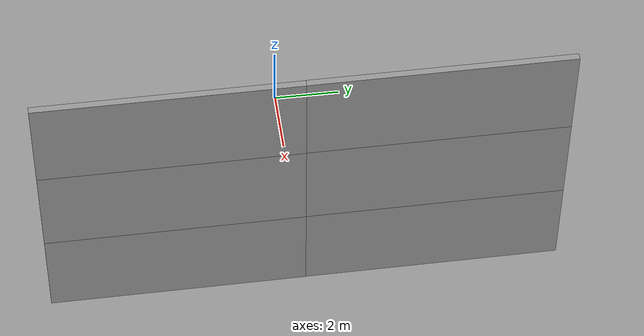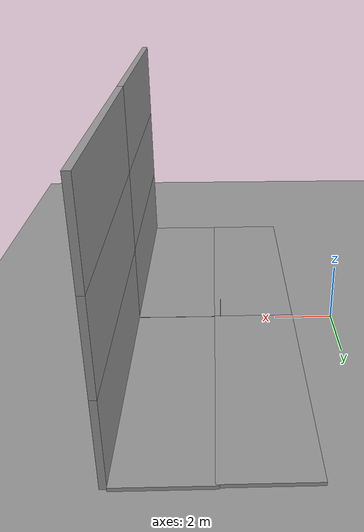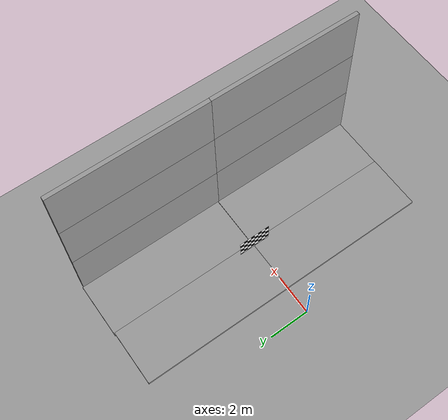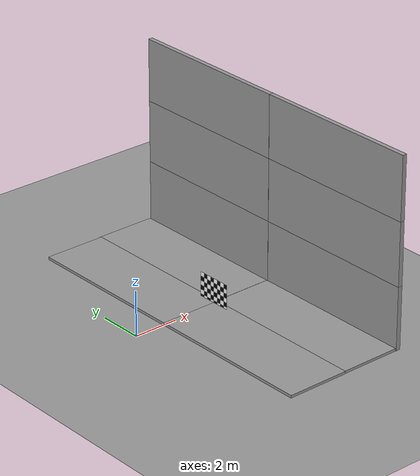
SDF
<sdf version="1.6">
 <world name="default">
  <light name="sun" type="directional">
   <pose>0 0 10 0 -0 0</pose>
   <diffuse>0.8 0.8 0.8 1</diffuse>
   <specular>0.1 0.1 0.1 1</specular>
   <attenuation>
    <range>1000</range>
    <constant>0.9</constant>
    <linear>0.01</linear>
    <quadratic>0.001</quadratic>
   </attenuation>
   <direction>-0.5 0.5 -1</direction>
  </light>
  <gravity>0 0 -9.8</gravity>
  <magnetic_field>6e-06 2.3e-05 -4.2e-05</magnetic_field>
  <atmosphere type="adiabatic"/>
  <physics name="default_physics" default="0" type="ode">
   <max_step_size>0.001</max_step_size>
   <real_time_factor>1</real_time_factor>
   <real_time_update_rate>1000</real_time_update_rate>
  </physics>
  <scene><ambient>0.4 0.4 0.4 1</ambient><background>0.7 0.7 0.7 1</background><shadows>1</shadows></scene>
  <spherical_coordinates>
   <surface_model>EARTH_WGS84</surface_model>
   <latitude_deg>0</latitude_deg>
   <longitude_deg>0</longitude_deg>
   <elevation>0</elevation>
   <heading_deg>0</heading_deg>
  </spherical_coordinates>
  <model name="grey_wall">
   <static>1</static>
   <link name="link">
    <pose>0 0 1.4 0 -0 0</pose>
    <collision name="collision"><geometry><box><size>7.5 0.2 2.8</size></box></geometry></collision>
    <visual name="visual">
     <cast_shadows>0</cast_shadows>
     <geometry><box><size>7.5 0.2 2.8</size></box></geometry>
     <material>
      <script>
       <uri>model://grey_wall/materials/scripts</uri>
       <uri>model://grey_wall/materials/textures</uri>
       <name>vrc/grey_wall</name>
      </script>
     </material>
    </visual>
    <gravity>0</gravity>
   </link>
   <pose>7 -3.75 0 0 -0 1.57</pose>
  </model>
  <audio><device>default</device></audio>
  <model name="grey_wall_clone">
   <static>1</static>
   <link name="link">
    <pose>0 0 1.4 0 -0 0</pose>
    <collision name="collision"><geometry><box><size>7.5 0.2 2.8</size></box></geometry></collision>
    <visual name="visual">
     <cast_shadows>0</cast_shadows>
     <geometry><box><size>7.5 0.2 2.8</size></box></geometry>
     <material>
      <script>
       <uri>model://grey_wall/materials/scripts</uri>
       <uri>model://grey_wall/materials/textures</uri>
       <name>vrc/grey_wall</name>
      </script>
     </material>
    </visual>
    <gravity>0</gravity>
   </link>
   <pose>7 3.75 0 0 -0 1.57</pose>
  </model>
  <model name="grey_wall_clone_0">
   <static>1</static>
   <link name="link">
    <pose>0 0 1.4 0 -0 0</pose>
    <collision name="collision"><geometry><box><size>7.5 0.2 2.8</size></box></geometry></collision>
    <visual name="visual">
     <cast_shadows>0</cast_shadows>
     <geometry><box><size>7.5 0.2 2.8</size></box></geometry>
     <material>
      <script>
       <uri>model://grey_wall/materials/scripts</uri>
       <uri>model://grey_wall/materials/textures</uri>
       <name>vrc/grey_wall</name>
      </script>
     </material>
    </visual>
    <gravity>0</gravity>
   </link>
   <pose>7 -3.75 2.8 0 -0 1.57</pose>
  </model>
  <model name="grey_wall_clone_1">
   <static>1</static>
   <link name="link">
    <pose>0 0 1.4 0 -0 0</pose>
    <collision name="collision"><geometry><box><size>7.5 0.2 2.8</size></box></geometry></collision>
    <visual name="visual">
     <cast_shadows>0</cast_shadows>
     <geometry><box><size>7.5 0.2 2.8</size></box></geometry>
     <material>
      <script>
       <uri>model://grey_wall/materials/scripts</uri>
       <uri>model://grey_wall/materials/textures</uri>
       <name>vrc/grey_wall</name>
      </script>
     </material>
    </visual>
    <gravity>0</gravity>
   </link>
   <pose>7 3.75 2.8 0 -0 1.57</pose>
  </model>
  <model name="checkerboard_6_8_0_2">
   <static>1</static>
   <link name="checkerboard_6_8_0_2_body">
    <visual name="checker_0_0">
     <pose>-0.5 -0.7 0 0 -0 0</pose>
     <geometry><box><size>0.2 0.2 0.0002</size></box></geometry>
     <material>
      <ambient>0 0 0 1</ambient>
      <diffuse>0 0 0 1</diffuse>
      <specular>0 0 0 1</specular>
      <emissive>0 0 0 1</emissive>
     </material>
    </visual>
    <visual name="checker_0_1">
     <pose>-0.5 -0.5 0 0 -0 0</pose>
     <geometry><box><size>0.2 0.2 0.0002</size></box></geometry>
     <material>
      <ambient>1 1 1 1</ambient>
      <diffuse>1 1 1 1</diffuse>
      <specular>1 1 1 1</specular>
      <emissive>1 1 1 1</emissive>
     </material>
    </visual>
    <visual name="checker_0_2">
     <pose>-0.5 -0.3 0 0 -0 0</pose>
     <geometry><box><size>0.2 0.2 0.0002</size></box></geometry>
     <material>
      <ambient>0 0 0 1</ambient>
      <diffuse>0 0 0 1</diffuse>
      <specular>0 0 0 1</specular>
      <emissive>0 0 0 1</emissive>
     </material>
    </visual>
    <visual name="checker_0_3">
     <pose>-0.5 -0.1 0 0 -0 0</pose>
     <geometry><box><size>0.2 0.2 0.0002</size></box></geometry>
     <material>
      <ambient>1 1 1 1</ambient>
      <diffuse>1 1 1 1</diffuse>
      <specular>1 1 1 1</specular>
      <emissive>1 1 1 1</emissive>
     </material>
    </visual>
    <visual name="checker_0_4">
     <pose>-0.5 0.1 0 0 -0 0</pose>
     <geometry><box><size>0.2 0.2 0.0002</size></box></geometry>
     <material>
      <ambient>0 0 0 1</ambient>
      <diffuse>0 0 0 1</diffuse>
      <specular>0 0 0 1</specular>
      <emissive>0 0 0 1</emissive>
     </material>
    </visual>
    <visual name="checker_0_5">
     <pose>-0.5 0.3 0 0 -0 0</pose>
     <geometry><box><size>0.2 0.2 0.0002</size></box></geometry>
     <material>
      <ambient>1 1 1 1</ambient>
      <diffuse>1 1 1 1</diffuse>
      <specular>1 1 1 1</specular>
      <emissive>1 1 1 1</emissive>
     </material>
    </visual>
    <visual name="checker_0_6">
     <pose>-0.5 0.5 0 0 -0 0</pose>
     <geometry><box><size>0.2 0.2 0.0002</size></box></geometry>
     <material>
      <ambient>0 0 0 1</ambient>
      <diffuse>0 0 0 1</diffuse>
      <specular>0 0 0 1</specular>
      <emissive>0 0 0 1</emissive>
     </material>
    </visual>
    <visual name="checker_0_7">
     <pose>-0.5 0.7 0 0 -0 0</pose>
     <geometry><box><size>0.2 0.2 0.0002</size></box></geometry>
     <material>
      <ambient>1 1 1 1</ambient>
      <diffuse>1 1 1 1</diffuse>
      <specular>1 1 1 1</specular>
      <emissive>1 1 1 1</emissive>
     </material>
    </visual>
    <visual name="checker_1_0">
     <pose>-0.3 -0.7 0 0 -0 0</pose>
     <geometry><box><size>0.2 0.2 0.0002</size></box></geometry>
     <material>
      <ambient>1 1 1 1</ambient>
      <diffuse>1 1 1 1</diffuse>
      <specular>1 1 1 1</specular>
      <emissive>1 1 1 1</emissive>
     </material>
    </visual>
    <visual name="checker_1_1">
     <pose>-0.3 -0.5 0 0 -0 0</pose>
     <geometry><box><size>0.2 0.2 0.0002</size></box></geometry>
     <material>
      <ambient>0 0 0 1</ambient>
      <diffuse>0 0 0 1</diffuse>
      <specular>0 0 0 1</specular>
      <emissive>0 0 0 1</emissive>
     </material>
    </visual>
    <visual name="checker_1_2">
     <pose>-0.3 -0.3 0 0 -0 0</pose>
     <geometry><box><size>0.2 0.2 0.0002</size></box></geometry>
     <material>
      <ambient>1 1 1 1</ambient>
      <diffuse>1 1 1 1</diffuse>
      <specular>1 1 1 1</specular>
      <emissive>1 1 1 1</emissive>
     </material>
    </visual>
    <visual name="checker_1_3">
     <pose>-0.3 -0.1 0 0 -0 0</pose>
     <geometry><box><size>0.2 0.2 0.0002</size></box></geometry>
     <material>
      <ambient>0 0 0 1</ambient>
      <diffuse>0 0 0 1</diffuse>
      <specular>0 0 0 1</specular>
      <emissive>0 0 0 1</emissive>
     </material>
    </visual>
    <visual name="checker_1_4">
     <pose>-0.3 0.1 0 0 -0 0</pose>
     <geometry><box><size>0.2 0.2 0.0002</size></box></geometry>
     <material>
      <ambient>1 1 1 1</ambient>
      <diffuse>1 1 1 1</diffuse>
      <specular>1 1 1 1</specular>
      <emissive>1 1 1 1</emissive>
     </material>
    </visual>
    <visual name="checker_1_5">
     <pose>-0.3 0.3 0 0 -0 0</pose>
     <geometry><box><size>0.2 0.2 0.0002</size></box></geometry>
     <material>
      <ambient>0 0 0 1</ambient>
      <diffuse>0 0 0 1</diffuse>
      <specular>0 0 0 1</specular>
      <emissive>0 0 0 1</emissive>
     </material>
    </visual>
    <visual name="checker_1_6">
     <pose>-0.3 0.5 0 0 -0 0</pose>
     <geometry><box><size>0.2 0.2 0.0002</size></box></geometry>
     <material>
      <ambient>1 1 1 1</ambient>
      <diffuse>1 1 1 1</diffuse>
      <specular>1 1 1 1</specular>
      <emissive>1 1 1 1</emissive>
     </material>
    </visual>
    <visual name="checker_1_7">
     <pose>-0.3 0.7 0 0 -0 0</pose>
     <geometry><box><size>0.2 0.2 0.0002</size></box></geometry>
     <material>
      <ambient>0 0 0 1</ambient>
      <diffuse>0 0 0 1</diffuse>
      <specular>0 0 0 1</specular>
      <emissive>0 0 0 1</emissive>
     </material>
    </visual>
    <visual name="checker_2_0">
     <pose>-0.1 -0.7 0 0 -0 0</pose>
     <geometry><box><size>0.2 0.2 0.0002</size></box></geometry>
     <material>
      <ambient>0 0 0 1</ambient>
      <diffuse>0 0 0 1</diffuse>
      <specular>0 0 0 1</specular>
      <emissive>0 0 0 1</emissive>
     </material>
    </visual>
    <visual name="checker_2_1">
     <pose>-0.1 -0.5 0 0 -0 0</pose>
     <geometry><box><size>0.2 0.2 0.0002</size></box></geometry>
     <material>
      <ambient>1 1 1 1</ambient>
      <diffuse>1 1 1 1</diffuse>
      <specular>1 1 1 1</specular>
      <emissive>1 1 1 1</emissive>
     </material>
    </visual>
    <visual name="checker_2_2">
     <pose>-0.1 -0.3 0 0 -0 0</pose>
     <geometry><box><size>0.2 0.2 0.0002</size></box></geometry>
     <material>
      <ambient>0 0 0 1</ambient>
      <diffuse>0 0 0 1</diffuse>
      <specular>0 0 0 1</specular>
      <emissive>0 0 0 1</emissive>
     </material>
    </visual>
    <visual name="checker_2_3">
     <pose>-0.1 -0.1 0 0 -0 0</pose>
     <geometry><box><size>0.2 0.2 0.0002</size></box></geometry>
     <material>
      <ambient>1 1 1 1</ambient>
      <diffuse>1 1 1 1</diffuse>
      <specular>1 1 1 1</specular>
      <emissive>1 1 1 1</emissive>
     </material>
    </visual>
    <visual name="checker_2_4">
     <pose>-0.1 0.1 0 0 -0 0</pose>
     <geometry><box><size>0.2 0.2 0.0002</size></box></geometry>
     <material>
      <ambient>0 0 0 1</ambient>
      <diffuse>0 0 0 1</diffuse>
      <specular>0 0 0 1</specular>
      <emissive>0 0 0 1</emissive>
     </material>
    </visual>
    <visual name="checker_2_5">
     <pose>-0.1 0.3 0 0 -0 0</pose>
     <geometry><box><size>0.2 0.2 0.0002</size></box></geometry>
     <material>
      <ambient>1 1 1 1</ambient>
      <diffuse>1 1 1 1</diffuse>
      <specular>1 1 1 1</specular>
      <emissive>1 1 1 1</emissive>
     </material>
    </visual>
    <visual name="checker_2_6">
     <pose>-0.1 0.5 0 0 -0 0</pose>
     <geometry><box><size>0.2 0.2 0.0002</size></box></geometry>
     <material>
      <ambient>0 0 0 1</ambient>
      <diffuse>0 0 0 1</diffuse>
      <specular>0 0 0 1</specular>
      <emissive>0 0 0 1</emissive>
     </material>
    </visual>
    <visual name="checker_2_7">
     <pose>-0.1 0.7 0 0 -0 0</pose>
     <geometry><box><size>0.2 0.2 0.0002</size></box></geometry>
     <material>
      <ambient>1 1 1 1</ambient>
      <diffuse>1 1 1 1</diffuse>
      <specular>1 1 1 1</specular>
      <emissive>1 1 1 1</emissive>
     </material>
    </visual>
    <visual name="checker_3_0">
     <pose>0.1 -0.7 0 0 -0 0</pose>
     <geometry><box><size>0.2 0.2 0.0002</size></box></geometry>
     <material>
      <ambient>1 1 1 1</ambient>
      <diffuse>1 1 1 1</diffuse>
      <specular>1 1 1 1</specular>
      <emissive>1 1 1 1</emissive>
     </material>
    </visual>
    <visual name="checker_3_1">
     <pose>0.1 -0.5 0 0 -0 0</pose>
     <geometry><box><size>0.2 0.2 0.0002</size></box></geometry>
     <material>
      <ambient>0 0 0 1</ambient>
      <diffuse>0 0 0 1</diffuse>
      <specular>0 0 0 1</specular>
      <emissive>0 0 0 1</emissive>
     </material>
    </visual>
    <visual name="checker_3_2">
     <pose>0.1 -0.3 0 0 -0 0</pose>
     <geometry><box><size>0.2 0.2 0.0002</size></box></geometry>
     <material>
      <ambient>1 1 1 1</ambient>
      <diffuse>1 1 1 1</diffuse>
      <specular>1 1 1 1</specular>
      <emissive>1 1 1 1</emissive>
     </material>
    </visual>
    <visual name="checker_3_3">
     <pose>0.1 -0.1 0 0 -0 0</pose>
     <geometry><box><size>0.2 0.2 0.0002</size></box></geometry>
     <material>
      <ambient>0 0 0 1</ambient>
      <diffuse>0 0 0 1</diffuse>
      <specular>0 0 0 1</specular>
      <emissive>0 0 0 1</emissive>
     </material>
    </visual>
    <visual name="checker_3_4">
     <pose>0.1 0.1 0 0 -0 0</pose>
     <geometry><box><size>0.2 0.2 0.0002</size></box></geometry>
     <material>
      <ambient>1 1 1 1</ambient>
      <diffuse>1 1 1 1</diffuse>
      <specular>1 1 1 1</specular>
      <emissive>1 1 1 1</emissive>
     </material>
    </visual>
    <visual name="checker_3_5">
     <pose>0.1 0.3 0 0 -0 0</pose>
     <geometry><box><size>0.2 0.2 0.0002</size></box></geometry>
     <material>
      <ambient>0 0 0 1</ambient>
      <diffuse>0 0 0 1</diffuse>
      <specular>0 0 0 1</specular>
      <emissive>0 0 0 1</emissive>
     </material>
    </visual>
    <visual name="checker_3_6">
     <pose>0.1 0.5 0 0 -0 0</pose>
     <geometry><box><size>0.2 0.2 0.0002</size></box></geometry>
     <material>
      <ambient>1 1 1 1</ambient>
      <diffuse>1 1 1 1</diffuse>
      <specular>1 1 1 1</specular>
      <emissive>1 1 1 1</emissive>
     </material>
    </visual>
    <visual name="checker_3_7">
     <pose>0.1 0.7 0 0 -0 0</pose>
     <geometry><box><size>0.2 0.2 0.0002</size></box></geometry>
     <material>
      <ambient>0 0 0 1</ambient>
      <diffuse>0 0 0 1</diffuse>
      <specular>0 0 0 1</specular>
      <emissive>0 0 0 1</emissive>
     </material>
    </visual>
    <visual name="checker_4_0">
     <pose>0.3 -0.7 0 0 -0 0</pose>
     <geometry><box><size>0.2 0.2 0.0002</size></box></geometry>
     <material>
      <ambient>0 0 0 1</ambient>
      <diffuse>0 0 0 1</diffuse>
      <specular>0 0 0 1</specular>
      <emissive>0 0 0 1</emissive>
     </material>
    </visual>
    <visual name="checker_4_1">
     <pose>0.3 -0.5 0 0 -0 0</pose>
     <geometry><box><size>0.2 0.2 0.0002</size></box></geometry>
     <material>
      <ambient>1 1 1 1</ambient>
      <diffuse>1 1 1 1</diffuse>
      <specular>1 1 1 1</specular>
      <emissive>1 1 1 1</emissive>
     </material>
    </visual>
    <visual name="checker_4_2">
     <pose>0.3 -0.3 0 0 -0 0</pose>
     <geometry><box><size>0.2 0.2 0.0002</size></box></geometry>
     <material>
      <ambient>0 0 0 1</ambient>
      <diffuse>0 0 0 1</diffuse>
      <specular>0 0 0 1</specular>
      <emissive>0 0 0 1</emissive>
     </material>
    </visual>
    <visual name="checker_4_3">
     <pose>0.3 -0.1 0 0 -0 0</pose>
     <geometry><box><size>0.2 0.2 0.0002</size></box></geometry>
     <material>
      <ambient>1 1 1 1</ambient>
      <diffuse>1 1 1 1</diffuse>
      <specular>1 1 1 1</specular>
      <emissive>1 1 1 1</emissive>
     </material>
    </visual>
    <visual name="checker_4_4">
     <pose>0.3 0.1 0 0 -0 0</pose>
     <geometry><box><size>0.2 0.2 0.0002</size></box></geometry>
     <material>
      <ambient>0 0 0 1</ambient>
      <diffuse>0 0 0 1</diffuse>
      <specular>0 0 0 1</specular>
      <emissive>0 0 0 1</emissive>
     </material>
    </visual>
    <visual name="checker_4_5">
     <pose>0.3 0.3 0 0 -0 0</pose>
     <geometry><box><size>0.2 0.2 0.0002</size></box></geometry>
     <material>
      <ambient>1 1 1 1</ambient>
      <diffuse>1 1 1 1</diffuse>
      <specular>1 1 1 1</specular>
      <emissive>1 1 1 1</emissive>
     </material>
    </visual>
    <visual name="checker_4_6">
     <pose>0.3 0.5 0 0 -0 0</pose>
     <geometry><box><size>0.2 0.2 0.0002</size></box></geometry>
     <material>
      <ambient>0 0 0 1</ambient>
      <diffuse>0 0 0 1</diffuse>
      <specular>0 0 0 1</specular>
      <emissive>0 0 0 1</emissive>
     </material>
    </visual>
    <visual name="checker_4_7">
     <pose>0.3 0.7 0 0 -0 0</pose>
     <geometry><box><size>0.2 0.2 0.0002</size></box></geometry>
     <material>
      <ambient>1 1 1 1</ambient>
      <diffuse>1 1 1 1</diffuse>
      <specular>1 1 1 1</specular>
      <emissive>1 1 1 1</emissive>
     </material>
    </visual>
    <visual name="checker_5_0">
     <pose>0.5 -0.7 0 0 -0 0</pose>
     <geometry><box><size>0.2 0.2 0.0002</size></box></geometry>
     <material>
      <ambient>1 1 1 1</ambient>
      <diffuse>1 1 1 1</diffuse>
      <specular>1 1 1 1</specular>
      <emissive>1 1 1 1</emissive>
     </material>
    </visual>
    <visual name="checker_5_1">
     <pose>0.5 -0.5 0 0 -0 0</pose>
     <geometry><box><size>0.2 0.2 0.0002</size></box></geometry>
     <material>
      <ambient>0 0 0 1</ambient>
      <diffuse>0 0 0 1</diffuse>
      <specular>0 0 0 1</specular>
      <emissive>0 0 0 1</emissive>
     </material>
    </visual>
    <visual name="checker_5_2">
     <pose>0.5 -0.3 0 0 -0 0</pose>
     <geometry><box><size>0.2 0.2 0.0002</size></box></geometry>
     <material>
      <ambient>1 1 1 1</ambient>
      <diffuse>1 1 1 1</diffuse>
      <specular>1 1 1 1</specular>
      <emissive>1 1 1 1</emissive>
     </material>
    </visual>
    <visual name="checker_5_3">
     <pose>0.5 -0.1 0 0 -0 0</pose>
     <geometry><box><size>0.2 0.2 0.0002</size></box></geometry>
     <material>
      <ambient>0 0 0 1</ambient>
      <diffuse>0 0 0 1</diffuse>
      <specular>0 0 0 1</specular>
      <emissive>0 0 0 1</emissive>
     </material>
    </visual>
    <visual name="checker_5_4">
     <pose>0.5 0.1 0 0 -0 0</pose>
     <geometry><box><size>0.2 0.2 0.0002</size></box></geometry>
     <material>
      <ambient>1 1 1 1</ambient>
      <diffuse>1 1 1 1</diffuse>
      <specular>1 1 1 1</specular>
      <emissive>1 1 1 1</emissive>
     </material>
    </visual>
    <visual name="checker_5_5">
     <pose>0.5 0.3 0 0 -0 0</pose>
     <geometry><box><size>0.2 0.2 0.0002</size></box></geometry>
     <material>
      <ambient>0 0 0 1</ambient>
      <diffuse>0 0 0 1</diffuse>
      <specular>0 0 0 1</specular>
      <emissive>0 0 0 1</emissive>
     </material>
    </visual>
    <visual name="checker_5_6">
     <pose>0.5 0.5 0 0 -0 0</pose>
     <geometry><box><size>0.2 0.2 0.0002</size></box></geometry>
     <material>
      <ambient>1 1 1 1</ambient>
      <diffuse>1 1 1 1</diffuse>
      <specular>1 1 1 1</specular>
      <emissive>1 1 1 1</emissive>
     </material>
    </visual>
    <visual name="checker_5_7">
     <pose>0.5 0.7 0 0 -0 0</pose>
     <geometry><box><size>0.2 0.2 0.0002</size></box></geometry>
     <material>
      <ambient>0 0 0 1</ambient>
      <diffuse>0 0 0 1</diffuse>
      <specular>0 0 0 1</specular>
      <emissive>0 0 0 1</emissive>
     </material>
    </visual>
    <collision name="collision"><geometry><box><size>1.2 1.6 0.0001</size></box></geometry></collision>
   </link>
   <pose>4 0 0.6 0 1.57 0</pose>
  </model>
  <model name="grey_wall_clone_2">
   <static>1</static>
   <link name="link">
    <pose>0 0 1.4 0 -0 0</pose>
    <collision name="collision"><geometry><box><size>7.5 0.2 2.8</size></box></geometry></collision>
    <visual name="visual">
     <cast_shadows>0</cast_shadows>
     <geometry><box><size>7.5 0.2 2.8</size></box></geometry>
     <material>
      <script>
       <uri>model://grey_wall/materials/scripts</uri>
       <uri>model://grey_wall/materials/textures</uri>
       <name>vrc/grey_wall</name>
      </script>
     </material>
    </visual>
    <gravity>0</gravity>
   </link>
   <pose>7 -3.75 5.6 0 -0 1.57</pose>
  </model>
  <model name="grey_wall_clone_3">
   <static>1</static>
   <link name="link">
    <pose>0 0 1.4 0 -0 0</pose>
    <collision name="collision"><geometry><box><size>7.5 0.2 2.8</size></box></geometry></collision>
    <visual name="visual">
     <cast_shadows>0</cast_shadows>
     <geometry><box><size>7.5 0.2 2.8</size></box></geometry>
     <material>
      <script>
       <uri>model://grey_wall/materials/scripts</uri>
       <uri>model://grey_wall/materials/textures</uri>
       <name>vrc/grey_wall</name>
      </script>
     </material>
    </visual>
    <gravity>0</gravity>
   </link>
   <pose>7 3.75 5.6 0 -0 1.57</pose>
  </model>
  <model name="ground_plane_0">
   <static>1</static>
   <link name="link">
    <collision name="collision">
     <geometry><plane><normal>0 0 1</normal><size>100 100</size></plane></geometry>
     <surface><friction><ode><mu>100</mu><mu2>50</mu2></ode></friction></surface>
    </collision>
    <visual name="visual">
     <cast_shadows>0</cast_shadows>
     <geometry><plane><normal>0 0 1</normal><size>100 100</size></plane></geometry>
     <material>
      <script><uri>file://media/materials/scripts/gazebo.material</uri><name>Gazebo/Grey</name></script>
     </material>
    </visual>
   </link>
  </model>
  <model name="grey_wall_clone_2_clone_clone_1">
   <static>1</static>
   <link name="link">
    <pose>0 0 1.4 0 -0 0</pose>
    <collision name="collision"><geometry><box><size>7.5 0.2 2.8</size></box></geometry></collision>
    <visual name="visual">
     <cast_shadows>0</cast_shadows>
     <geometry><box><size>7.5 0.2 2.8</size></box></geometry>
     <material>
      <script>
       <uri>model://grey_wall/materials/scripts</uri>
       <uri>model://grey_wall/materials/textures</uri>
       <name>vrc/grey_wall</name>
      </script>
     </material>
    </visual>
    <gravity>0</gravity>
   </link>
   <pose>1.41193 -3.72586 0 1.57 -0 1.57</pose>
  </model>
  <model name="grey_wall_clone_2_clone_clone_1_clone">
   <static>1</static>
   <link name="link">
    <pose>0 0 1.4 0 -0 0</pose>
    <collision name="collision"><geometry><box><size>7.5 0.2 2.8</size></box></geometry></collision>
    <visual name="visual">
     <cast_shadows>0</cast_shadows>
     <geometry><box><size>7.5 0.2 2.8</size></box></geometry>
     <material>
      <script>
       <uri>model://grey_wall/materials/scripts</uri>
       <uri>model://grey_wall/materials/textures</uri>
       <name>vrc/grey_wall</name>
      </script>
     </material>
    </visual>
    <gravity>0</gravity>
   </link>
   <pose>4.13692 -3.71051 0 1.57 -0 1.57</pose>
  </model>
  <model name="grey_wall_clone_2_clone_clone_1_clone_0">
   <static>1</static>
   <link name="link">
    <pose>0 0 1.4 0 -0 0</pose>
    <collision name="collision"><geometry><box><size>7.5 0.2 2.8</size></box></geometry></collision>
    <visual name="visual">
     <cast_shadows>0</cast_shadows>
     <geometry><box><size>7.5 0.2 2.8</size></box></geometry>
     <material>
      <script>
       <uri>model://grey_wall/materials/scripts</uri>
       <uri>model://grey_wall/materials/textures</uri>
       <name>vrc/grey_wall</name>
      </script>
     </material>
    </visual>
    <gravity>0</gravity>
   </link>
   <pose>4.10213 3.79866 0 1.57 -0 1.57</pose>
  </model>
  <model name="grey_wall_clone_2_clone_clone_1_clone_1">
   <static>1</static>
   <link name="link">
    <pose>0 0 1.4 0 -0 0</pose>
    <collision name="collision"><geometry><box><size>7.5 0.2 2.8</size></box></geometry></collision>
    <visual name="visual">
     <cast_shadows>0</cast_shadows>
     <geometry><box><size>7.5 0.2 2.8</size></box></geometry>
     <material>
      <script>
       <uri>model://grey_wall/materials/scripts</uri>
       <uri>model://grey_wall/materials/textures</uri>
       <name>vrc/grey_wall</name>
      </script>
     </material>
    </visual>
    <gravity>0</gravity>
   </link>
   <pose>1.40727 3.76151 0 1.57 -0 1.57</pose>
  </model>
 </world>
</sdf>
